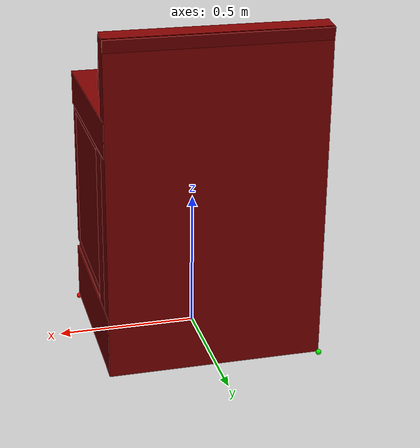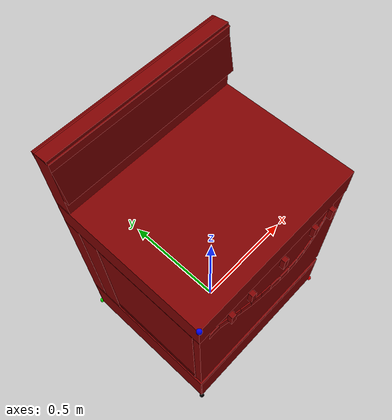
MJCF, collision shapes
<?xml version='1.0' encoding='utf-8'?>
<mujoco model="model">
    <compiler angle="radian" />
    <asset>
        <mesh file="visuals/Stove002_Door001.obj" name="Stove002_Door_vis" />
        <mesh file="visuals/Stove002_Knob005.obj" name="Stove002_Knob005_vis" />
        <mesh file="visuals/Stove002_Container001.obj" name="Stove002_Container001_vis" />
        <mesh file="visuals/Stove002_Knob003.obj" name="Stove002_Knob003_vis" />
        <mesh file="visuals/Stove002_Body001.obj" name="Stove002_Body_vis" />
        <mesh file="visuals/Stove002_Knob002.obj" name="Stove002_Knob002_vis" />
        <mesh file="visuals/Stove002_Container002.obj" name="Stove002_Container002_vis" />
        <mesh file="visuals/Stove002_Knob001.obj" name="Stove002_Knob001_vis" />
        <mesh file="visuals/Stove002_Knob004.obj" name="Stove002_Knob004_vis" />
        <mesh file="visuals/Stove002_Door001_Clear.obj" name="Stove002_Door_Clear_vis" />
        <texture file="visuals/T_Stove002_BC001.png" name="T_Stove002_BC001" type="2d" />
        <material name="material" rgba="1 1 1 1" texture="T_Stove002_BC001" />
        <material name="material_Clear" rgba="1 1 1 0.4" texture="T_Stove002_BC001" />
    </asset>
    <default>
        <default class="visual">
            <geom conaffinity="0" contype="0" group="1" type="mesh" />
        </default>
        <default class="collision">
            <geom group="0" rgba="0.5 0 0 0.5" />
        </default>
    </default>
    <worldbody>
        <body>
            <site rgba="0 0 0 1" size="0.01" pos="-0.3806692212820053 -0.3005908578634262 0" name="ext_p0" />
            <site rgba="1 0 0 1" size="0.01" pos="0.38288380205631256 -0.3005908578634262 0" name="ext_px" />
            <site rgba="0 1 0 1" size="0.01" pos="-0.3806692212820053 0.35160841047763824 0" name="ext_py" />
            <site rgba="0 0 1 1" size="0.01" pos="-0.3806692212820053 -0.3005908578634262 0.918207" name="ext_pz" />
            <site rgba="0.5 0.5 0.5 1" size="0.01" pos="-0.3527758717536926 -0.2593034505844116 0.26818516850471497" name="int_p0" />
            <site rgba="1 1 0 1" size="0.01" pos="0.35911858081817627 -0.2593034505844116 0.268185019493103" name="int_px" />
            <site rgba="0 1 1 1" size="0.01" pos="-0.3527758717536926 0.1864541471004486 0.268185019493103" name="int_py" />
            <site rgba="1 0 1 1" size="0.01" pos="-0.3527761697769165 -0.2593034505844116 0.7783624529838562" name="int_pz" />
            <body name="object">
                <site name="burner_on_front_left" pos="-0.17664170265197754 -0.11401037126779556 0.9000118374824524" size="0.054999999701976776 0.003000000026077032" rgba="0.5 0 0 1" type="cylinder" />
                <site name="burner_on_front_right" pos="0.17924824357032776 -0.11401037126779556 0.9000118374824524" size="0.04999999701976776 0.003000000026077032" rgba="0.5 0 0 1" type="cylinder" />
                <site name="burner_on_rear_left" pos="-0.1757943034172058 0.08703438192605972 0.9000118374824524" size="0.03999999910593033 0.003000000026077032" rgba="0.5 0 0 1" type="cylinder" />
                <site name="burner_on_rear_right" pos="0.17924824357032776 0.08703438192605972 0.9000118374824524" size="0.029999999329447746 0.003000000026077032" rgba="0.5 0 0 1" type="cylinder" />
                <site name="burner_on_center" pos="0.0017751604318618774 -0.01348799467086792 0.9000118374824524" size="0.03999999910593033 0.003000000026077032" rgba="0.5 0 0 1" type="cylinder" />
                <site name="burner_front_left_place_site" pos="-0.17664170265197754 -0.11401037126779556 0.9000118374824524" size="0.0949999988079071 0.0001" rgba="0.5 0 0 0" type="cylinder" />
                <site name="burner_front_right_place_site" pos="0.17924824357032776 -0.11401037126779556 0.9000118374824524" size="0.07499999552965164 0.0001" rgba="0.5 0 0 0" type="cylinder" />
                <site name="burner_rear_left_place_site" pos="-0.1757943034172058 0.08703438192605972 0.9000118374824524" size="0.07499999552965164 0.0001" rgba="0.5 0 0 0" type="cylinder" />
                <site name="burner_rear_right_place_site" pos="0.17924824357032776 0.08703438192605972 0.9000118374824524" size="0.0949999988079071 0.0001" rgba="0.5 0 0 0" type="cylinder" />
                <site name="burner_center_place_site" pos="0.0017751604318618774 -0.01348799467086792 0.9000118374824524" size="0.0949999988079071 0.0001" rgba="0.5 0 0 0" type="cylinder" />
                <geom mesh="Stove002_Body_vis" type="mesh" solimp="0.998 0.998 0.001" solref="0.001 1" density="100" friction="0.95 0.3 0.1" class="visual" material="material" />
                <geom class="collision" type="box" pos="5.960464477539063e-08 0.30140355229377747 1.0938138961791992" size="0.03550148010253906 0.38089004158973694 0.09826724976301193" quat="0.7046727538108826 -0.058620158582925797 -0.0586201548576355 -0.7046727538108826" />
                <geom class="collision" type="box" pos="5.960464477539063e-08 0.31035685539245605 0.593767523765564" size="0.0351078137755394 0.3808901011943817 0.5934365391731262" quat="0.7071067690849304 0.0 -0.0 -0.7071067690849304" />
                <geom class="collision" type="box" pos="-3.725290298461914e-09 0.01796501874923706 0.855861246585846" size="0.31919580698013306 0.3829112648963928 0.06112949922680855" quat="0.7071067690849304 0.0 -0.0 -0.7071067690849304" />
                <geom class="collision" type="box" pos="-0.3703156113624573 0.007390648126602173 0.39718616008758545" size="0.006676323711872101 0.26959094405174255 0.39635467529296875" quat="-1.6292068494294654e-07 -0.0 0.0 -1.0" />
                <geom class="collision" type="box" pos="0.37036260962486267 0.007390499114990234 0.39718616008758545" size="0.006816748529672623 0.26959091424942017 0.39635467529296875" quat="-1.6292068494294654e-07 -0.0 0.0 -1.0" />
                <geom class="collision" type="box" pos="0.0004965037805959582 0.0005030333995819092 0.781567394733429" size="0.2660907208919525 0.37945282459259033 0.009091421961784363" quat="0.7071067690849304 0.0 -0.0 -0.7071067690849304" />
                <geom class="collision" type="box" pos="0.0004965038970112801 0.004448920488357544 0.24096277356147766" size="0.2656450569629669 0.37945282459259033 0.01277067605406046" quat="0.7071067690849304 0.0 -0.0 -0.7071067690849304" />
                <geom class="collision" type="box" pos="0.0004965029656887054 -0.015529065392911434 0.09684852510690689" size="0.28562304377555847 0.37945282459259033 0.0966682955622673" quat="0.7071067690849304 0.0 -0.0 -0.7071067690849304" />
                <geom class="collision" type="box" pos="5.960464477539063e-08 0.22631961107254028 0.47236987948417664" size="0.04224157705903053 0.3808901011943817 0.3127388656139374" quat="0.7071067690849304 0.0 -0.0 -0.7071067690849304" />
                <geom class="collision" type="box" pos="-3.725290298461914e-09 0.018328547477722168 0.11462336778640747" size="0.31883227825164795 0.3829112648963928 0.10329973697662354" quat="0.7071067690849304 0.0 -0.0 -0.7071067690849304" />
                <body name="Stove002_Door">
                    <joint axis="1 0 0" pos="0.001107251737266779 -0.2971402406692505 0.2324613332748413" limited="true" name="Stove002_Door_joint" range="0.0 1.5707963267948966" type="hinge" damping="2" frictionloss="2" armature=".01" />
                    <geom mesh="Stove002_Door_vis" type="mesh" solimp="0.998 0.998 0.001" solref="0.001 1" density="100" friction="0.95 0.3 0.1" class="visual" material="material" />
                    <geom class="collision" type="box" pos="0.0004965364933013916 -0.283332496881485 0.515107274055481" size="0.015052221715450287 0.3794528543949127 0.2675080895423889" quat="0.7071067690849304 0.0 -0.0 -0.7071067690849304" />
                    <geom class="collision" type="box" pos="-0.31378960609436035 -0.2994883060455322 0.7594114542007446" size="0.0024574636481702328 0.022222572937607765 0.01903529278934002" quat="0.7071067690849304 0.0 -0.0 -0.7071067690849304" />
                    <geom class="collision" type="box" pos="-0.26983383297920227 -0.30326834321022034 0.7594114542007446" size="0.0024574636481702328 0.022222571074962616 0.01903529278934002" quat="0.6362748742103577 0.0 -0.0 -0.7714624404907227" />
                    <geom class="collision" type="box" pos="-0.22632867097854614 -0.31191176176071167 0.7594114542007446" size="0.0024574636481702328 0.022222571074962616 0.01903529278934002" quat="0.6362748742103577 0.0 -0.0 -0.7714624404907227" />
                    <geom class="collision" type="box" pos="-0.18267950415611267 -0.31990692019462585 0.7594114542007446" size="0.0024574636481702328 0.022222576662898064 0.01903529278934002" quat="0.6439476609230042 0.0 -0.0 -0.7650695443153381" />
                    <geom class="collision" type="box" pos="-0.1386701464653015 -0.3266056180000305 0.7594114542007446" size="0.0024574636481702328 0.022222571074962616 0.01903529278934002" quat="0.6602786183357239 0.0 -0.0 -0.7510207295417786" />
                    <geom class="collision" type="box" pos="-0.09429275989532471 -0.33108872175216675 0.7594114542007446" size="0.0024574636481702328 0.022222572937607765 0.01903529278934002" quat="0.6785788536071777 0.0 -0.0 -0.7345275282859802" />
                    <geom class="collision" type="box" pos="-0.0500224232673645 -0.3341405391693115 0.7594114542007446" size="0.0024574636481702328 0.022222572937607765 0.01903529278934002" quat="0.6858806014060974 0.0 -0.0 -0.7277140617370605" />
                    <geom class="collision" type="box" pos="-0.005539596080780029 -0.33586370944976807 0.7594114542007446" size="0.0024574636481702328 0.022222572937607765 0.01903529278934002" quat="0.7013972401618958 0.0 -0.0 -0.7127706408500671" />
                    <geom class="collision" type="box" pos="0.038394421339035034 -0.3355671167373657 0.7594114542007446" size="0.0024574636481702328 0.022222569212317467 0.01903529278934002" quat="0.718921959400177 0.0 -0.0 -0.6950907707214355" />
                    <geom class="collision" type="box" pos="0.08284538984298706 -0.333157479763031 0.7594115138053894" size="0.0024574636481702328 0.022222574800252914 0.01903529278934002" quat="0.7337281703948975 0.0 -0.0 -0.6794431209564209" />
                    <geom class="collision" type="box" pos="0.12720520794391632 -0.3285037875175476 0.7594114542007446" size="0.0024574636481702328 0.022222571074962616 0.01903529278934002" quat="0.7502428293228149 0.0 -0.0 -0.6611623764038086" />
                    <geom class="collision" type="box" pos="0.17116855084896088 -0.32247066497802734 0.7594115138053894" size="0.0024574636481702328 0.022222578525543213 0.01903529278934002" quat="0.7568084001541138 0.0 -0.0 -0.6536368131637573" />
                    <geom class="collision" type="box" pos="0.2149691879749298 -0.3147432804107666 0.7594115138053894" size="0.0024574636481702328 0.022222574800252914 0.01903529278934002" quat="0.7731620073318481 0.0 -0.0 -0.6342085599899292" />
                    <geom class="collision" type="box" pos="0.2582726776599884 -0.30601343512535095 0.7594115138053894" size="0.0024574636481702328 0.022222574800252914 0.01903529278934002" quat="0.7731620073318481 0.0 -0.0 -0.6342085599899292" />
                    <geom class="collision" type="box" pos="0.30192193388938904 -0.29814794659614563 0.7594114542007446" size="0.0024574636481702328 0.022222571074962616 0.01903529278934002" quat="0.7578297257423401 0.0 -0.0 -0.6524524092674255" />
                    <body name="Stove002_Door_Clear">
                        <geom mesh="Stove002_Door_Clear_vis" type="mesh" solimp="0.998 0.998 0.001" solref="0.001 1" density="100" friction="0.95 0.3 0.1" class="visual" material="material_Clear" />
                        <geom class="collision" type="box" pos="0.0004965364933013916 -0.283332496881485 0.515107274055481" size="0.015052221715450287 0.3794528543949127 0.2675080895423889" quat="0.7071067690849304 0.0 -0.0 -0.7071067690849304" />
                        <geom class="collision" type="box" pos="-0.31378960609436035 -0.2994883060455322 0.7594114542007446" size="0.0024574636481702328 0.022222572937607765 0.01903529278934002" quat="0.7071067690849304 0.0 -0.0 -0.7071067690849304" />
                        <geom class="collision" type="box" pos="-0.26983383297920227 -0.30326834321022034 0.7594114542007446" size="0.0024574636481702328 0.022222571074962616 0.01903529278934002" quat="0.6362748742103577 0.0 -0.0 -0.7714624404907227" />
                        <geom class="collision" type="box" pos="-0.22632867097854614 -0.31191176176071167 0.7594114542007446" size="0.0024574636481702328 0.022222571074962616 0.01903529278934002" quat="0.6362748742103577 0.0 -0.0 -0.7714624404907227" />
                        <geom class="collision" type="box" pos="-0.18267950415611267 -0.31990692019462585 0.7594114542007446" size="0.0024574636481702328 0.022222576662898064 0.01903529278934002" quat="0.6439476609230042 0.0 -0.0 -0.7650695443153381" />
                        <geom class="collision" type="box" pos="-0.1386701464653015 -0.3266056180000305 0.7594114542007446" size="0.0024574636481702328 0.022222571074962616 0.01903529278934002" quat="0.6602786183357239 0.0 -0.0 -0.7510207295417786" />
                        <geom class="collision" type="box" pos="-0.09429275989532471 -0.33108872175216675 0.7594114542007446" size="0.0024574636481702328 0.022222572937607765 0.01903529278934002" quat="0.6785788536071777 0.0 -0.0 -0.7345275282859802" />
                        <geom class="collision" type="box" pos="-0.0500224232673645 -0.3341405391693115 0.7594114542007446" size="0.0024574636481702328 0.022222572937607765 0.01903529278934002" quat="0.6858806014060974 0.0 -0.0 -0.7277140617370605" />
                        <geom class="collision" type="box" pos="-0.005539596080780029 -0.33586370944976807 0.7594114542007446" size="0.0024574636481702328 0.022222572937607765 0.01903529278934002" quat="0.7013972401618958 0.0 -0.0 -0.7127706408500671" />
                        <geom class="collision" type="box" pos="0.038394421339035034 -0.3355671167373657 0.7594114542007446" size="0.0024574636481702328 0.022222569212317467 0.01903529278934002" quat="0.718921959400177 0.0 -0.0 -0.6950907707214355" />
                        <geom class="collision" type="box" pos="0.08284538984298706 -0.333157479763031 0.7594115138053894" size="0.0024574636481702328 0.022222574800252914 0.01903529278934002" quat="0.7337281703948975 0.0 -0.0 -0.6794431209564209" />
                        <geom class="collision" type="box" pos="0.12720520794391632 -0.3285037875175476 0.7594114542007446" size="0.0024574636481702328 0.022222571074962616 0.01903529278934002" quat="0.7502428293228149 0.0 -0.0 -0.6611623764038086" />
                        <geom class="collision" type="box" pos="0.17116855084896088 -0.32247066497802734 0.7594115138053894" size="0.0024574636481702328 0.022222578525543213 0.01903529278934002" quat="0.7568084001541138 0.0 -0.0 -0.6536368131637573" />
                        <geom class="collision" type="box" pos="0.2149691879749298 -0.3147432804107666 0.7594115138053894" size="0.0024574636481702328 0.022222574800252914 0.01903529278934002" quat="0.7731620073318481 0.0 -0.0 -0.6342085599899292" />
                        <geom class="collision" type="box" pos="0.2582726776599884 -0.30601343512535095 0.7594115138053894" size="0.0024574636481702328 0.022222574800252914 0.01903529278934002" quat="0.7731620073318481 0.0 -0.0 -0.6342085599899292" />
                        <geom class="collision" type="box" pos="0.30192193388938904 -0.29814794659614563 0.7594114542007446" size="0.0024574636481702328 0.022222571074962616 0.01903529278934002" quat="0.7578297257423401 0.0 -0.0 -0.6524524092674255" />
                    </body>
                </body>
                <body name="Stove002_Knob001">
                    <joint axis="0 1 0" pos="-0.25579914450645447 -0.31895431876182556 0.8210009336471558" limited="true" name="knob_front_left_joint" range="-0.7853981633974483 2.443460952792061" type="hinge" damping="2" frictionloss="2" armature=".01" />
                    <geom mesh="Stove002_Knob001_vis" type="mesh" solimp="0.998 0.998 0.001" solref="0.001 1" density="100" friction="0.95 0.3 0.1" class="visual" material="material" />
                    <geom class="collision" type="box" pos="-0.25568217039108276 -0.3215765357017517 0.82060307264328" size="0.008992655202746391 0.010108581744134426 0.02622038684785366" quat="0.7071067690849304 0.0 -0.0 -0.7071067690849304" />
                </body>
                <body name="Stove002_Knob002">
                    <joint axis="0 1 0" pos="-0.16010935604572296 -0.31895431876182556 0.8210009932518005" limited="true" name="knob_front_right_joint" range="-0.7853981633974483 2.443460952792061" type="hinge" damping="2" frictionloss="2" armature=".01" />
                    <geom mesh="Stove002_Knob002_vis" type="mesh" solimp="0.998 0.998 0.001" solref="0.001 1" density="100" friction="0.95 0.3 0.1" class="visual" material="material" />
                    <geom class="collision" type="box" pos="-0.15982592105865479 -0.3215765357017517 0.82060307264328" size="0.008992655202746391 0.010108581744134426 0.02622038684785366" quat="0.7071067690849304 0.0 -0.0 -0.7071067690849304" />
                </body>
                <body name="Stove002_Knob003">
                    <joint axis="0 1 0" pos="0.0011065942235291004 -0.31895431876182556 0.8210009336471558" limited="true" name="knob_rear_left_joint" range="-0.7853981633974483 2.443460952792061" type="hinge" damping="2" frictionloss="2" armature=".01" />
                    <geom mesh="Stove002_Knob003_vis" type="mesh" solimp="0.998 0.998 0.001" solref="0.001 1" density="100" friction="0.95 0.3 0.1" class="visual" material="material" />
                    <geom class="collision" type="box" pos="0.0011910796165466309 -0.3215765357017517 0.82060307264328" size="0.008992655202746391 0.010108583606779575 0.02622038684785366" quat="0.7071067690849304 0.0 -0.0 -0.7071067690849304" />
                </body>
                <body name="Stove002_Knob004">
                    <joint axis="0 1 0" pos="0.1623232662677765 -0.31895431876182556 0.8210009932518005" limited="true" name="knob_rear_right_joint" range="-0.7853981633974483 2.443460952792061" type="hinge" damping="2" frictionloss="2" armature=".01" />
                    <geom mesh="Stove002_Knob004_vis" type="mesh" solimp="0.998 0.998 0.001" solref="0.001 1" density="100" friction="0.95 0.3 0.1" class="visual" material="material" />
                    <geom class="collision" type="box" pos="0.1625945121049881 -0.3215765357017517 0.82060307264328" size="0.008992655202746391 0.010108581744134426 0.02622038684785366" quat="0.7071067690849304 0.0 -0.0 -0.7071067690849304" />
                </body>
                <body name="Stove002_Knob005">
                    <joint axis="0 1 0" pos="0.25801342725753784 -0.31895431876182556 0.8210009932518005" limited="true" name="knob_center_joint" range="-0.7853981633974483 2.443460952792061" type="hinge" damping="2" frictionloss="2" armature=".01" />
                    <geom mesh="Stove002_Knob005_vis" type="mesh" solimp="0.998 0.998 0.001" solref="0.001 1" density="100" friction="0.95 0.3 0.1" class="visual" material="material" />
                    <geom class="collision" type="box" pos="0.2583792507648468 -0.3215765655040741 0.82060307264328" size="0.008992655202746391 0.010108581744134426 0.02622038684785366" quat="0.7071067690849304 0.0 -0.0 -0.7071067690849304" />
                </body>
                <body name="Stove002_Container001">
                    <joint axis="0 -1 0" pos="0.0010662836721166968 -0.04918345436453819 0.4422757923603058" limited="true" name="Stove002_Container001_joint" range="0.0 0.25" type="slide" damping="2" frictionloss="2" armature=".01" />
                    <geom mesh="Stove002_Container001_vis" type="mesh" solimp="0.998 0.998 0.001" solref="0.001 1" density="100" friction="0.95 0.3 0.1" class="visual" material="material" />
                    <geom class="collision" type="box" pos="0.0004964843392372131 -0.0466097891330719 0.4447084963321686" size="0.20339614152908325 0.3537983000278473 0.0034270368050783873" quat="0.7071067690849304 0.0 -0.0 -0.7071067690849304" />
                </body>
                <body name="Stove002_Container002">
                    <joint axis="0 -1 0" pos="0.0 0.0 0.8036378622055054" limited="true" name="Stove002_Container002_joint" range="0.0 0.25" type="slide" damping="2" frictionloss="2" armature=".01" />
                    <geom mesh="Stove002_Container002_vis" type="mesh" solimp="0.998 0.998 0.001" solref="0.001 1" density="100" friction="0.95 0.3 0.1" class="visual" material="material" />
                    <geom class="collision" type="box" pos="0.0004964843392372131 -0.0466097891330719 0.5827065110206604" size="0.20339614152908325 0.3537983000278473 0.003427028190344572" quat="0.7071067690849304 0.0 -0.0 -0.7071067690849304" />
                </body>
            </body>
        </body>
    </worldbody>
</mujoco>
